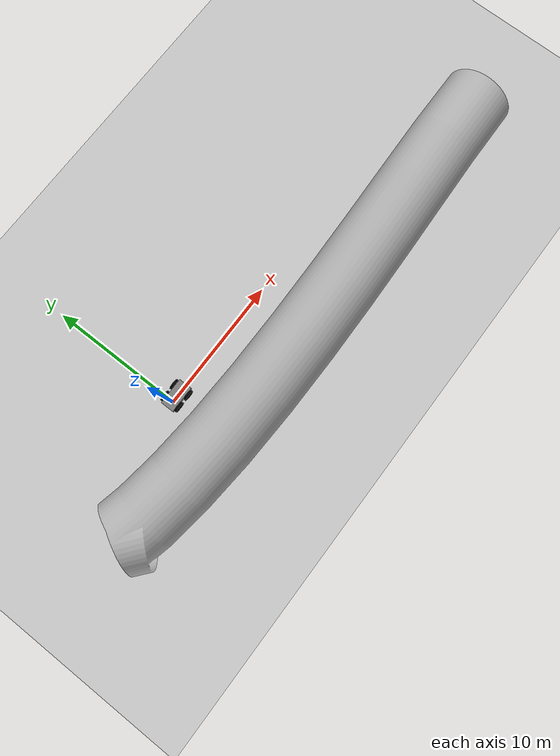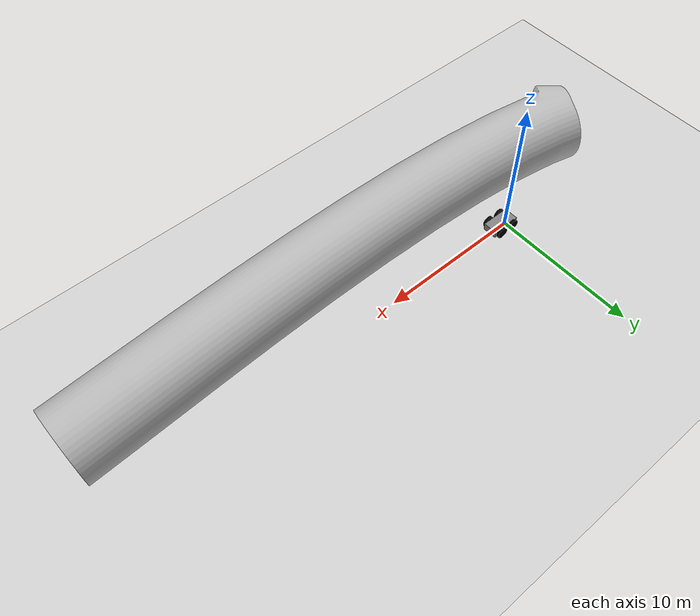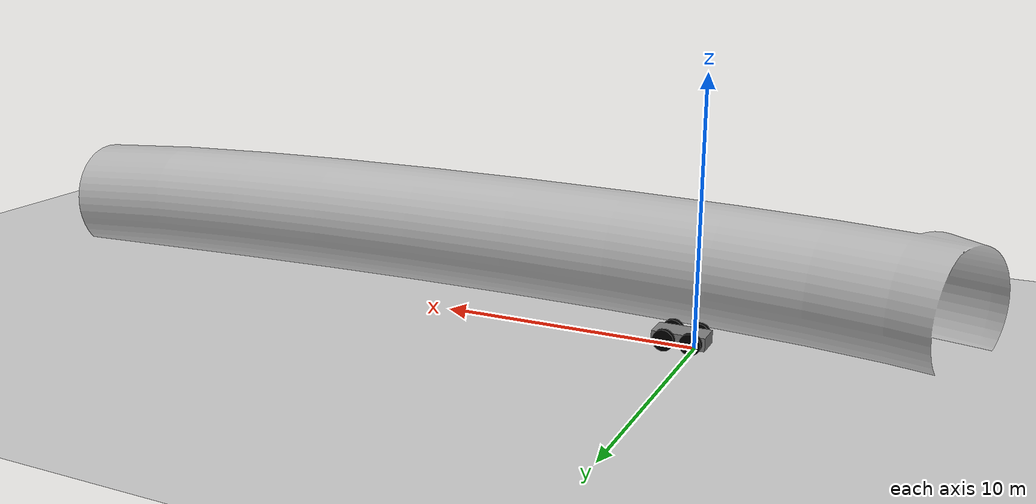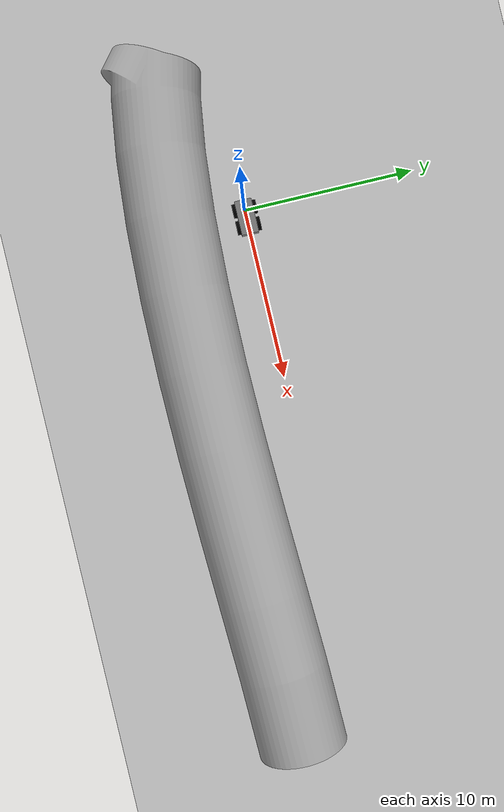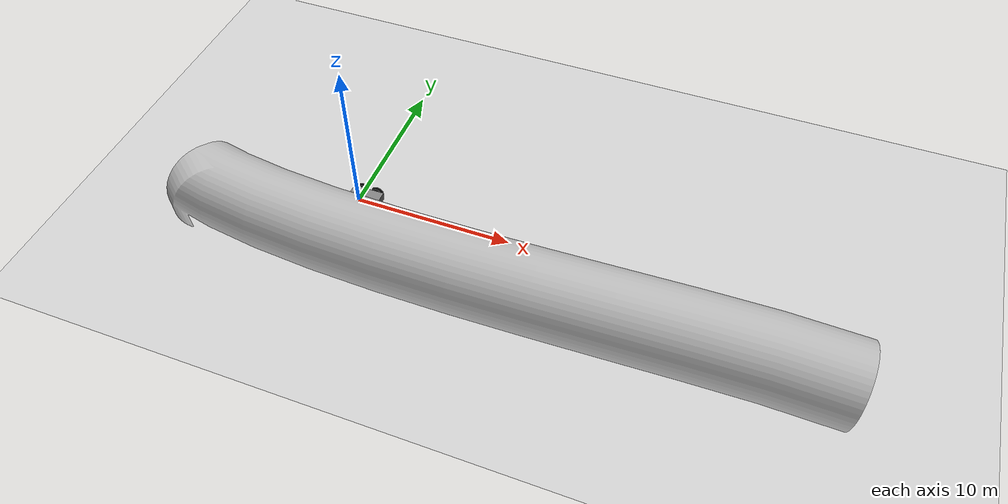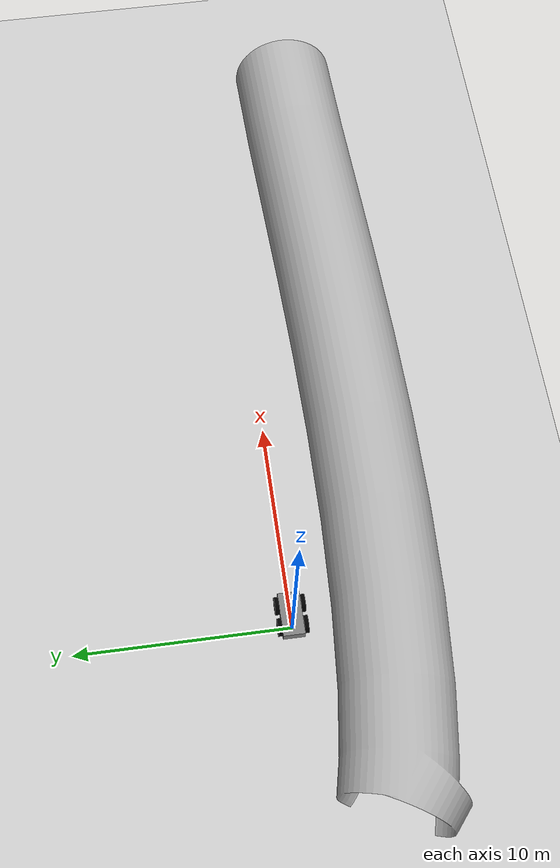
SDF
<sdf version="1.8">
 <world name="car_world">
  <physics name="1ms" type="ignored">
   <max_step_size>0.001</max_step_size>
   <real_time_factor>1.0</real_time_factor>
  </physics>
  <include><uri>model://test_tunnel</uri><pose>5.8393 -20.2138 0.9081 0.1180 0 2.3584</pose></include>
  <plugin filename="ignition-gazebo-sensors-system" name="ignition::gazebo::systems::Sensors"/>
  <plugin filename="libignition-gazebo-physics-system.so" name="ignition::gazebo::systems::Physics"/>
  <plugin filename="libignition-gazebo-user-commands-system.so" name="ignition::gazebo::systems::UserCommands"/>
  <plugin filename="libignition-gazebo-scene-broadcaster-system.so" name="ignition::gazebo::systems::SceneBroadcaster"/>
  <light type="directional" name="sun">
   <pose>0 0 10 0 0 0</pose>
   <diffuse>0.8 0.8 0.8 1</diffuse>
   <specular>0.2 0.2 0.2 1</specular>
   <attenuation>
    <range>1000</range>
    <constant>0.9</constant>
    <linear>0.01</linear>
    <quadratic>0.001</quadratic>
   </attenuation>
   <direction>-0.5 0.1 -0.9</direction>
  </light>
  <model name="ground_plane">
   <static>true</static>
   <link name="link">
    <collision name="collision"><geometry><plane><normal>0 0 1</normal></plane></geometry></collision>
    <visual name="visual">
     <geometry><plane><normal>0 0 1</normal><size>100 100</size></plane></geometry>
     <material>
      <ambient>0.8 0.8 0.8 1</ambient>
      <diffuse>0.8 0.8 0.8 1</diffuse>
      <specular>0.8 0.8 0.8 1</specular>
     </material>
    </visual>
   </link>
  </model>
  <model name="vehicle_blue" canonical_link="chassis">
   <frame name="lidar_frame" attached_to="chassis"><pose>-11.5500 -3.5413 0 0 0 0</pose></frame>
   <pose relative_to="world">0 0 0 0 0 0</pose>
   <link name="chassis">
    <pose relative_to="__model__">0.5 0 0.4 0 0 0</pose>
    <inertial>
     <mass>3.14395</mass>
     <inertia>
      <ixx>0.095329</ixx>
      <ixy>0</ixy>
      <ixz>0</ixz>
      <iyy>0.381317</iyy>
      <iyz>0</iyz>
      <izz>0.476646</izz>
     </inertia>
    </inertial>
    <visual name="visual">
     <geometry><box><size>2.0 1.0 0.5</size></box></geometry>
     <material>
      <ambient>0.5 0.5 0.5 1</ambient>
      <diffuse>0.5 0.5 0.5 1</diffuse>
      <specular>0.1 0.1 0.1 1</specular>
     </material>
    </visual>
    <collision name="collision"><geometry><box><size>2.0 1.0 0.5</size></box></geometry></collision>
   </link>
   <link name="camera_link">
    <pose>0 0 1 0 0 0</pose>
    <sensor name="camera_sensor" type="camera">
     <camera>
      <horizontal_fov>1.047</horizontal_fov>
      <image><width>640</width><height>480</height><format>R8G8B8</format></image>
      <clip><near>0.1</near><far>100</far></clip>
     </camera>
     <always_on>1</always_on>
     <update_rate>30</update_rate>
     <visualize>true</visualize>
     <topic>camera</topic>
    </sensor>
   </link>
   <joint name="chassis_camera_joint" type="fixed"><parent>chassis</parent><child>camera_link</child></joint>
   <link name="left_wheel">
    <pose relative_to="chassis">-0.5 0.6 0 -1.5707 0 0</pose>
    <inertial>
     <mass>1</mass>
     <inertia><ixx>0.043333</ixx><ixy>0</ixy><ixz>0</ixz><iyy>0.043333</iyy><iyz>0</iyz><izz>0.08</izz></inertia>
    </inertial>
    <visual name="visual">
     <geometry><cylinder><radius>0.4</radius><length>0.2</length></cylinder></geometry>
     <material><ambient>0 0 0 1</ambient><diffuse>0 0 0 1</diffuse><specular>0.1 0.1 0.1 1</specular></material>
    </visual>
    <collision name="collision">
     <geometry><cylinder><radius>0.4</radius><length>0.2</length></cylinder></geometry>
    </collision>
   </link>
   <link name="right_wheel">
    <pose relative_to="chassis">-0.5 -0.6 0 -1.5707 0 0</pose>
    <inertial>
     <mass>1</mass>
     <inertia><ixx>0.043333</ixx><ixy>0</ixy><ixz>0</ixz><iyy>0.043333</iyy><iyz>0</iyz><izz>0.08</izz></inertia>
    </inertial>
    <visual name="visual">
     <geometry><cylinder><radius>0.4</radius><length>0.2</length></cylinder></geometry>
     <material><ambient>0 0 0 1</ambient><diffuse>0 0 0 1</diffuse><specular>0.1 0.1 0.1 1</specular></material>
    </visual>
    <collision name="collision">
     <geometry><cylinder><radius>0.4</radius><length>0.2</length></cylinder></geometry>
    </collision>
   </link>
   <link name="left_wheel2">
    <pose relative_to="chassis">0.5 0.6 0 -1.5707 0 0</pose>
    <inertial>
     <mass>1</mass>
     <inertia><ixx>0.043333</ixx><ixy>0</ixy><ixz>0</ixz><iyy>0.043333</iyy><iyz>0</iyz><izz>0.08</izz></inertia>
    </inertial>
    <visual name="visual">
     <geometry><cylinder><radius>0.4</radius><length>0.2</length></cylinder></geometry>
     <material><ambient>0 0 0 1</ambient><diffuse>0 0 0 1</diffuse><specular>0.1 0.1 0.1 1</specular></material>
    </visual>
    <collision name="collision">
     <geometry><cylinder><radius>0.4</radius><length>0.2</length></cylinder></geometry>
    </collision>
   </link>
   <link name="right_wheel2">
    <pose relative_to="chassis">0.5 -0.6 0 -1.5707 0 0</pose>
    <inertial>
     <mass>1</mass>
     <inertia><ixx>0.043333</ixx><ixy>0</ixy><ixz>0</ixz><iyy>0.043333</iyy><iyz>0</iyz><izz>0.08</izz></inertia>
    </inertial>
    <visual name="visual">
     <geometry><cylinder><radius>0.4</radius><length>0.2</length></cylinder></geometry>
     <material><ambient>0 0 0 1</ambient><diffuse>0 0 0 1</diffuse><specular>0.1 0.1 0.1 1</specular></material>
    </visual>
    <collision name="collision">
     <geometry><cylinder><radius>0.4</radius><length>0.2</length></cylinder></geometry>
    </collision>
   </link>
   <joint name="left_wheel_joint" type="revolute">
    <pose relative_to="left_wheel"/>
    <parent>chassis</parent>
    <child>left_wheel</child>
    <axis>
     <xyz expressed_in="__model__">0 1 0</xyz>
     <limit><lower>-1.79769e+308</lower><upper>1.79769e+308</upper></limit>
    </axis>
   </joint>
   <joint name="right_wheel_joint" type="revolute">
    <pose relative_to="right_wheel"/>
    <parent>chassis</parent>
    <child>right_wheel</child>
    <axis>
     <xyz expressed_in="__model__">0 1 0</xyz>
     <limit><lower>-1.79769e+308</lower><upper>1.79769e+308</upper></limit>
    </axis>
   </joint>
   <joint name="left_wheel_joint2" type="revolute">
    <pose relative_to="left_wheel2"/>
    <parent>chassis</parent>
    <child>left_wheel2</child>
    <axis>
     <xyz expressed_in="__model__">0 1 0</xyz>
     <limit><lower>-1.79769e+308</lower><upper>1.79769e+308</upper></limit>
    </axis>
   </joint>
   <joint name="right_wheel_joint2" type="revolute">
    <pose relative_to="right_wheel2"/>
    <parent>chassis</parent>
    <child>right_wheel2</child>
    <axis>
     <xyz expressed_in="__model__">0 1 0</xyz>
     <limit><lower>-1.79769e+308</lower><upper>1.79769e+308</upper></limit>
    </axis>
   </joint>
   <plugin filename="libignition-gazebo-diff-drive-system.so" name="ignition::gazebo::systems::DiffDrive">
    <left_joint>left_wheel_joint</left_joint>
    <left_joint>left_wheel_joint2</left_joint>
    <right_joint>right_wheel_joint</right_joint>
    <right_joint>right_wheel_joint2</right_joint>
    <wheel_separation>1.2</wheel_separation>
    <wheel_radius>0.4</wheel_radius>
    <odom_publish_frequency>20</odom_publish_frequency>
    <topic>cmd_vel</topic>
   </plugin>
   <plugin filename="libignition-gazebo-triggered-publisher-system.so" name="ignition::gazebo::systems::TriggeredPublisher">
    <input type="ignition.msgs.Int32" topic="/keyboard/keypress"><match field="data">87</match></input>
    <output type="ignition.msgs.Twist" topic="/cmd_vel">linear: {x: 3}, angular: {z: 0.0}</output>
   </plugin>
   <plugin filename="libignition-gazebo-triggered-publisher-system.so" name="ignition::gazebo::systems::TriggeredPublisher">
    <input type="ignition.msgs.Int32" topic="/keyboard/keypress"><match field="data">83</match></input>
    <output type="ignition.msgs.Twist" topic="/cmd_vel">linear: {x:-3}, angular: {z: 0.0}</output>
   </plugin>
   <plugin filename="libignition-gazebo-triggered-publisher-system.so" name="ignition::gazebo::systems::TriggeredPublisher">
    <input type="ignition.msgs.Int32" topic="/keyboard/keypress"><match field="data">65</match></input>
    <output type="ignition.msgs.Twist" topic="/cmd_vel">linear: {x: 3}, angular: {z: 0.5}</output>
   </plugin>
   <plugin filename="libignition-gazebo-triggered-publisher-system.so" name="ignition::gazebo::systems::TriggeredPublisher">
    <input type="ignition.msgs.Int32" topic="/keyboard/keypress"><match field="data">68</match></input>
    <output type="ignition.msgs.Twist" topic="/cmd_vel">linear: {x: 3}, angular: {z: -0.5}</output>
   </plugin>
  </model>
 </world>
</sdf>

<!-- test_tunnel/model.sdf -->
<sdf version="1.9">
  <model name="test_tunnel">
    <static>true</static>
    <link name="link">

      <!-- Visual part (what you see) -->
      <visual name="tunnel_visual">
        <geometry>
          <mesh>
            <uri>model://test_tunnel/meshes/TestShape.dae</uri>
            <scale>0.07 0.07 0.07</scale>
          </mesh>
        </geometry>
      </visual>

      <!-- Collision for the tunnel walls -->
      <collision name="tunnel_collision">
        <geometry>
          <mesh>
            <uri>model://test_tunnel/meshes/TestShape.dae</uri>
            <scale>0.07 0.07 0.07</scale>
          </mesh>
        </geometry>
      </collision>

      <!-- Extra collision box to act as a base/ground support -->
      <collision name="ground_support">
        <geometry>
          <box>
            <size>2 2 0.05</size> <!-- width, depth, height -->
          </box>
        </geometry>
        <pose>0 0 -0.5 0 0 0</pose> <!-- place it under the tunnel -->
      </collision>

    </link>
  </model>
</sdf>
